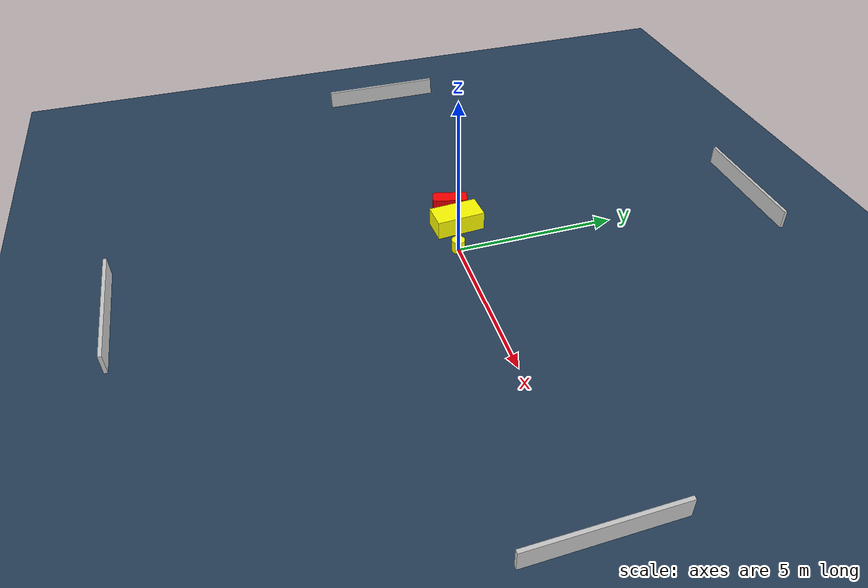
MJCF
<?xml version="1.0" ?>
<mujoco model="generated_environment">
  <option timestep="0.01" integrator="RK4" cone="elliptic"/>
  <default>
    <geom density="1"/>
  </default>
  <asset>
    <texture builtin="gradient" height="3072" name="skybox" rgb1="0.3 0.5 0.7" rgb2="0 0 0" type="skybox" width="512"/>
    <texture builtin="checker" height="300" name="groundplane" rgb1="0.2 0.3 0.4" rgb2="0.1 0.2 0.3" type="2d" width="300"/>
    <material name="groundplane" reflectance="0.2" texrepeat="5 5" texture="groundplane"/>
  </asset>
  <worldbody>
    <light dir="0 0 -1" directional="true" pos="0 0 1.5"/>
    <geom condim="3" friction="0.5 0.005 0.001" material="groundplane" name="floor" pos="0 0 0" size="0 0 0.05" type="plane"/>
    <body name="walls">
      <geom name="wall_1" condim="4" pos="-10.0 0.0 0.3" rgba="0.800000011920929 0.800000011920929 0.800000011920929 1.0" size="0.05 2.0 0.3" type="box"/>
      <geom name="wall_2" condim="4" pos="10.0 0.0 0.3" rgba="0.800000011920929 0.800000011920929 0.800000011920929 1.0" size="0.05 2.0 0.3" type="box"/>
      <geom name="wall_3" condim="4" pos="0.0 -10.0 0.3" rgba="0.800000011920929 0.800000011920929 0.800000011920929 1.0" size="2.0 0.05 0.3" type="box"/>
      <geom name="wall_4" condim="4" pos="0.0 10.0 0.3" rgba="0.800000011920929 0.800000011920929 0.800000011920929 1.0" size="2.0 0.05 0.3" type="box"/>
    </body>
    <body name="robot">
      <joint name="joint_x" type="slide" pos="0 0 0" axis="1 0 0"/>
      <joint name="joint_y" type="slide" pos="0 0 0" axis="0 1 0"/>
      <geom name="robot" type="cylinder" pos="0.0 0.0 0.2" size="0.2 0.2 0.0" mass="5.0" friction="1.0 0.005 0.0001" condim="4" rgba="1.0 1.0 0.0 1.0"/>
    </body>
    <body name="obstacle_1_movable">
      <geom name="obstacle_1_movable" condim="4" pos="-1.1436749762432847 0.3139099787035061 0.3" euler="0 0 273.6513905679316" friction="0.0 0.005 0.001" rgba="1.0 1.0 0.0 1.0" size="0.7535740158223923 0.40450860186353316 0.3" type="box" mass="0.1"/>
      <joint type="free"/>
    </body>
    <body name="obstacle_2_static">
      <geom name="obstacle_2_static" condim="4" pos="-1.9551456489733388 0.33904246529563375 0.3" euler="0 0 165.97505297978185" friction="0.0 0.005 0.001" rgba="1.0 0.0 0.0 1.0" size="0.2261439258750206 0.543318604247492 0.3" type="box"/>
    </body>
  </worldbody>
  <actuator>
    <motor name="actuator_x" joint="joint_x" gear="1" ctrlrange="-1 1"/>
    <motor name="actuator_y" joint="joint_y" gear="1" ctrlrange="-1 1"/>
  </actuator>
</mujoco>
